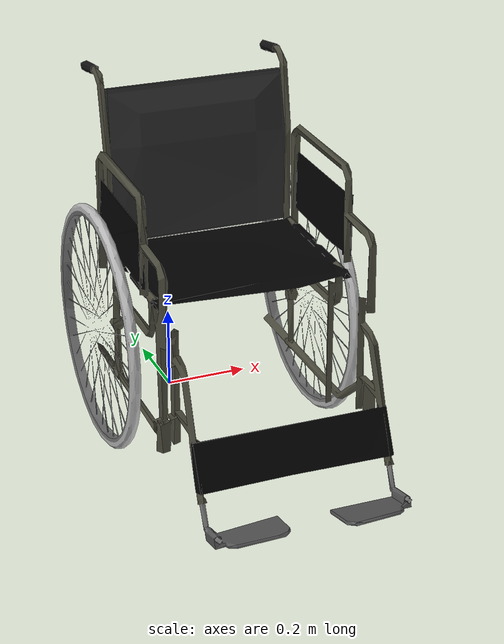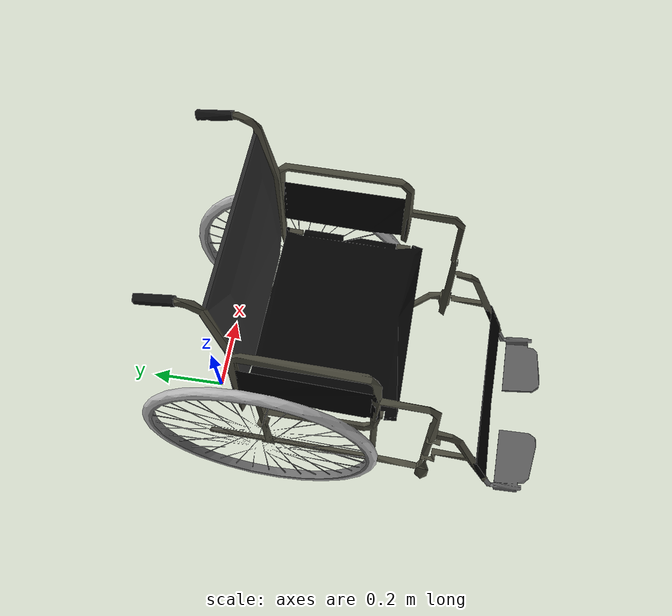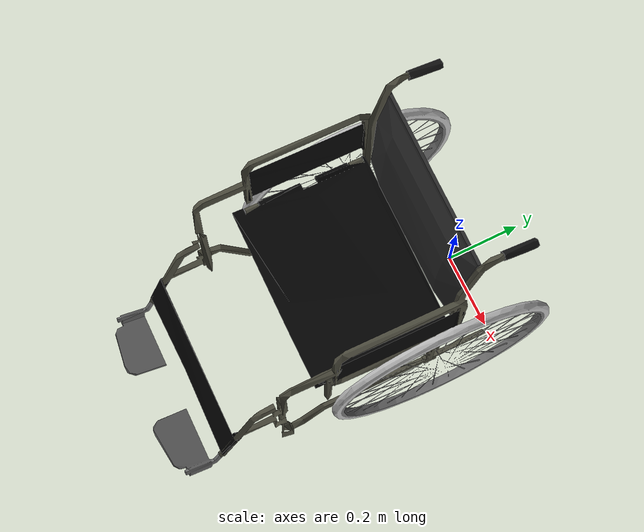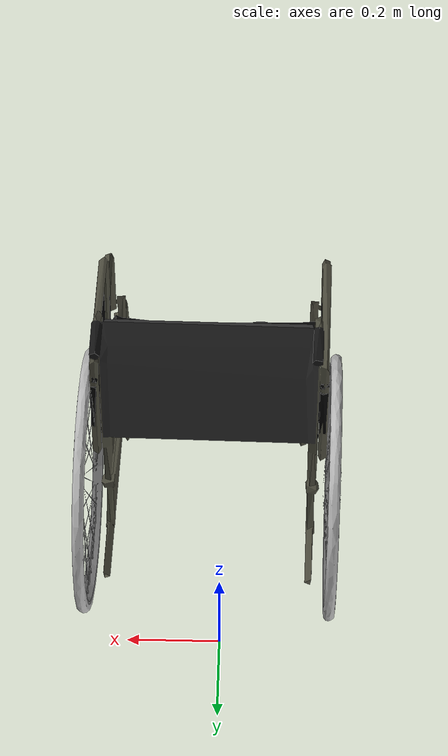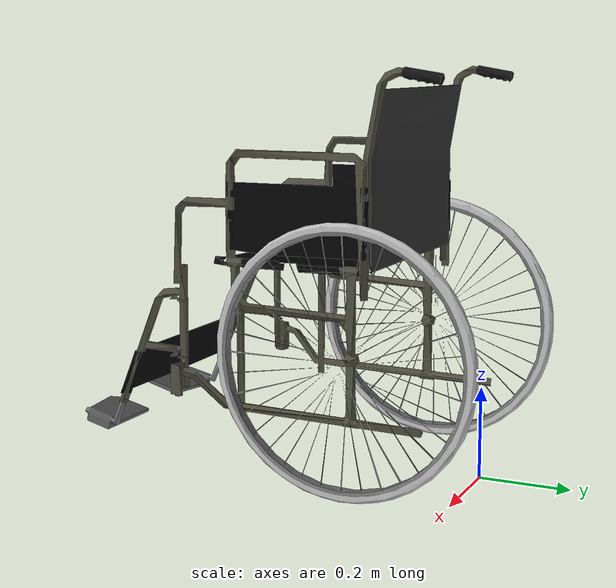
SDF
<?xml version='1.0'?>
<sdf version="1.5">

  <model name="wheel_chair">
    <static>false</static>
    <link name="link">

      <inertial>
        <pose>0 -0.2 0 0 0 0</pose>
        <mass>10</mass>
        <inertia>
          <ixx>1.0</ixx>       <!-- for a box: ixx = 0.083 * mass * (y*y + z*z) -->
          <ixy>0.0</ixy>       <!-- for a box: ixy = 0 -->
          <ixz>0.0</ixz>       <!-- for a box: ixz = 0 -->
          <iyy>1.0</iyy>       <!-- for a box: iyy = 0.083 * mass * (x*x + z*z) -->
          <iyz>0.0</iyz>       <!-- for a box: iyz = 0 -->
          <izz>1.0</izz>      <!-- for a box: izz = 0.083 * mass * (x*x + y*y) -->
        </inertia>
      </inertial>

      <collision name="collision">
        <geometry>
          <mesh>
            <uri>model://wheel_chair/wheel_chair_collision.dae</uri>
          </mesh>
        </geometry>
      </collision>

      <visual name="visual">
        <geometry>
          <mesh>
            <uri>model://wheel_chair/wheel_chair.dae</uri>
          </mesh>
        </geometry>
      </visual>

    </link>
  </model>

</sdf>
